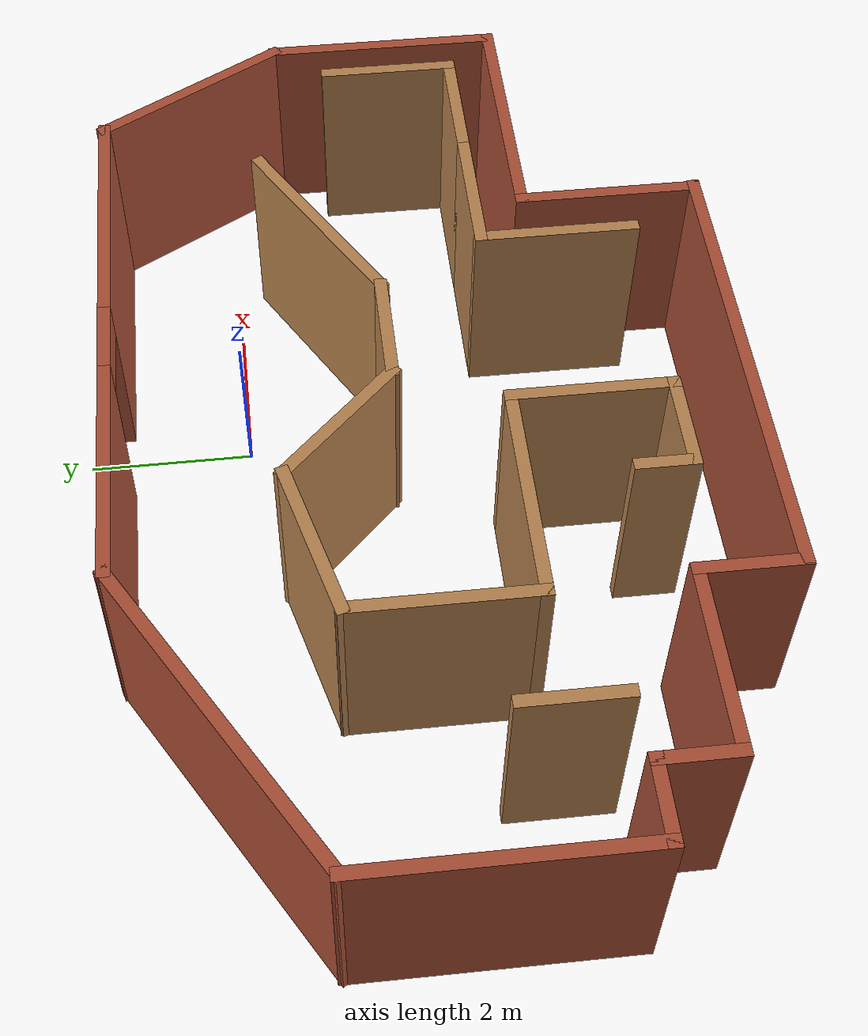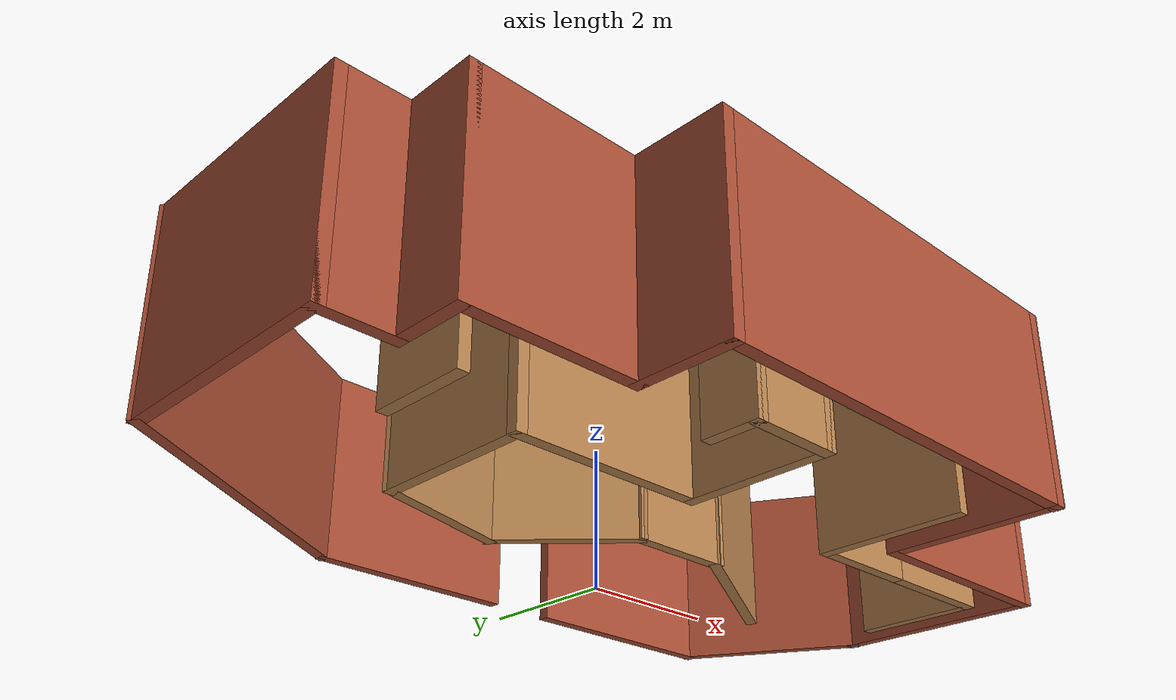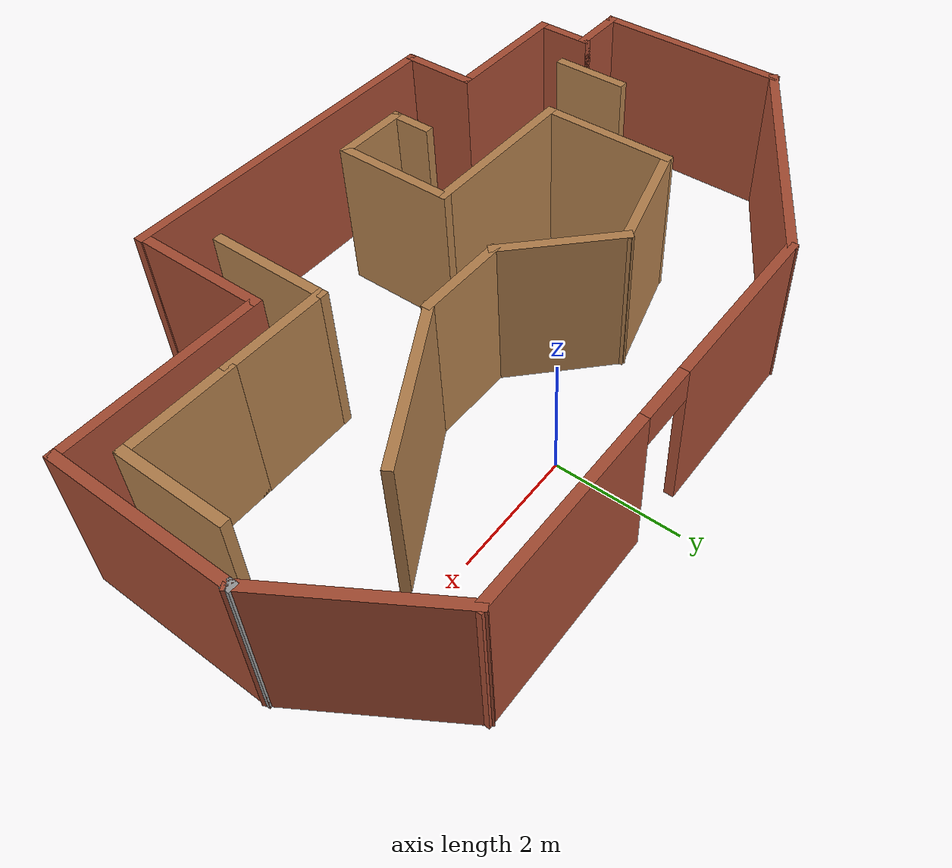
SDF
<?xml version='1.0'?>
<sdf version='1.6'>
  <model name='myworld'>
    <pose frame=''>-1.01461 -2.07217 0 0 -0 0</pose>
    <link name='Wall_10'>
      <collision name='Wall_10_Collision'>
        <geometry>
          <box>
            <size>1.75 0.15 2.5</size>
          </box>
        </geometry>
        <pose frame=''>0 0 1.25 0 -0 0</pose>
      </collision>
      <visual name='Wall_10_Visual'>
        <pose frame=''>0 0 1.25 0 -0 0</pose>
        <geometry>
          <box>
            <size>1.75 0.15 2.5</size>
          </box>
        </geometry>
        <material>
          <script>
            <uri>file://media/materials/scripts/gazebo.material</uri>
            <name>Gazebo/Wood</name>
          </script>
          <ambient>1 1 1 1</ambient>
        </material>
      </visual>
      <pose frame=''>5.32461 -0.097834 0 0 -0 1.5708</pose>
    </link>
    <link name='Wall_14'>
      <collision name='Wall_14_Collision'>
        <geometry>
          <box>
            <size>4.26973 0.15 2.5</size>
          </box>
        </geometry>
        <pose frame=''>0 0 1.25 0 -0 0</pose>
      </collision>
      <visual name='Wall_14_Visual'>
        <pose frame=''>0 0 1.25 0 -0 0</pose>
        <geometry>
          <box>
            <size>4.26973 0.15 2.5</size>
          </box>
        </geometry>
        <material>
          <script>
            <uri>file://media/materials/scripts/gazebo.material</uri>
            <name>Gazebo/Bricks</name>
          </script>
          <ambient>1 1 1 1</ambient>
        </material>
      </visual>
      <pose frame=''>-4.06148 2.53384 0 0 0 -2.59844</pose>
    </link>
    <link name='Wall_15'>
      <collision name='Wall_15_Collision'>
        <geometry>
          <box>
            <size>3.25 0.15 2.5</size>
          </box>
        </geometry>
        <pose frame=''>0 0 1.25 0 -0 0</pose>
      </collision>
      <visual name='Wall_15_Visual'>
        <pose frame=''>0 0 1.25 0 -0 0</pose>
        <geometry>
          <box>
            <size>3.25 0.15 2.5</size>
          </box>
        </geometry>
        <material>
          <script>
            <uri>file://media/materials/scripts/gazebo.material</uri>
            <name>Gazebo/Bricks</name>
          </script>
          <ambient>1 1 1 1</ambient>
        </material>
      </visual>
      <pose frame=''>-5.8249 -0.080771 0 0 0 -1.5708</pose>
    </link>
    <link name='Wall_16'>
      <collision name='Wall_16_Collision'>
        <geometry>
          <box>
            <size>1 0.15 2.5</size>
          </box>
        </geometry>
        <pose frame=''>0 0 1.25 0 -0 0</pose>
      </collision>
      <visual name='Wall_16_Visual'>
        <pose frame=''>0 0 1.25 0 -0 0</pose>
        <geometry>
          <box>
            <size>1 0.15 2.5</size>
          </box>
        </geometry>
        <material>
          <script>
            <uri>file://media/materials/scripts/gazebo.material</uri>
            <name>Gazebo/Bricks</name>
          </script>
          <ambient>1 1 1 1</ambient>
        </material>
      </visual>
      <pose frame=''>-5.3999 -1.63077 0 0 -0 0</pose>
    </link>
    <link name='Wall_17'>
      <collision name='Wall_17_Collision'>
        <geometry>
          <box>
            <size>1 0.15 2.5</size>
          </box>
        </geometry>
        <pose frame=''>0 0 1.25 0 -0 0</pose>
      </collision>
      <visual name='Wall_17_Visual'>
        <pose frame=''>0 0 1.25 0 -0 0</pose>
        <geometry>
          <box>
            <size>1 0.15 2.5</size>
          </box>
        </geometry>
        <material>
          <script>
            <uri>file://media/materials/scripts/gazebo.material</uri>
            <name>Gazebo/Bricks</name>
          </script>
          <ambient>1 1 1 1</ambient>
        </material>
      </visual>
      <pose frame=''>-4.9749 -2.05577 0 0 0 -1.5708</pose>
    </link>
    <link name='Wall_18'>
      <collision name='Wall_18_Collision'>
        <geometry>
          <box>
            <size>2.25 0.15 2.5</size>
          </box>
        </geometry>
        <pose frame=''>0 0 1.25 0 -0 0</pose>
      </collision>
      <visual name='Wall_18_Visual'>
        <pose frame=''>0 0 1.25 0 -0 0</pose>
        <geometry>
          <box>
            <size>2.25 0.15 2.5</size>
          </box>
        </geometry>
        <material>
          <script>
            <uri>file://media/materials/scripts/gazebo.material</uri>
            <name>Gazebo/Bricks</name>
          </script>
          <ambient>1 1 1 1</ambient>
        </material>
      </visual>
      <pose frame=''>-3.9249 -2.48077 0 0 -0 0</pose>
    </link>
    <link name='Wall_19'>
      <collision name='Wall_19_Collision'>
        <geometry>
          <box>
            <size>1.29565 0.15 2.5</size>
          </box>
        </geometry>
        <pose frame=''>0 0 1.25 0 -0 0</pose>
      </collision>
      <visual name='Wall_19_Visual'>
        <pose frame=''>0 0 1.25 0 -0 0</pose>
        <geometry>
          <box>
            <size>1.29565 0.15 2.5</size>
          </box>
        </geometry>
        <material>
          <script>
            <uri>file://media/materials/scripts/gazebo.material</uri>
            <name>Gazebo/Bricks</name>
          </script>
          <ambient>1 1 1 1</ambient>
        </material>
      </visual>
      <pose frame=''>-2.8749 -3.0536 0 0 0 -1.5708</pose>
    </link>
    <link name='Wall_20'>
      <collision name='Wall_20_Collision'>
        <geometry>
          <box>
            <size>5.75 0.15 2.5</size>
          </box>
        </geometry>
        <pose frame=''>0 0 1.25 0 -0 0</pose>
      </collision>
      <visual name='Wall_20_Visual'>
        <pose frame=''>0 0 1.25 0 -0 0</pose>
        <geometry>
          <box>
            <size>5.75 0.15 2.5</size>
          </box>
        </geometry>
        <material>
          <script>
            <uri>file://media/materials/scripts/gazebo.material</uri>
            <name>Gazebo/Bricks</name>
          </script>
          <ambient>1 1 1 1</ambient>
        </material>
      </visual>
      <pose frame=''>-0.057512 -3.62642 0 0 -0 0</pose>
    </link>
    <link name='Wall_21'>
      <collision name='Wall_21_Collision'>
        <geometry>
          <box>
            <size>2.29565 0.15 2.5</size>
          </box>
        </geometry>
        <pose frame=''>0 0 1.25 0 -0 0</pose>
      </collision>
      <visual name='Wall_21_Visual'>
        <pose frame=''>0 0 1.25 0 -0 0</pose>
        <geometry>
          <box>
            <size>2.29565 0.15 2.5</size>
          </box>
        </geometry>
        <material>
          <script>
            <uri>file://media/materials/scripts/gazebo.material</uri>
            <name>Gazebo/Bricks</name>
          </script>
          <ambient>1 1 1 1</ambient>
        </material>
      </visual>
      <pose frame=''>2.7251 -2.5536 0 0 -0 1.5708</pose>
    </link>
    <link name='Wall_22'>
      <collision name='Wall_22_Collision'>
        <geometry>
          <box>
            <size>3.25 0.15 2.5</size>
          </box>
        </geometry>
        <pose frame=''>0 0 1.25 0 -0 0</pose>
      </collision>
      <visual name='Wall_22_Visual'>
        <pose frame=''>0 0 1.25 0 -0 0</pose>
        <geometry>
          <box>
            <size>3.25 0.15 2.5</size>
          </box>
        </geometry>
        <material>
          <script>
            <uri>file://media/materials/scripts/gazebo.material</uri>
            <name>Gazebo/Bricks</name>
          </script>
          <ambient>1 1 1 1</ambient>
        </material>
      </visual>
      <pose frame=''>4.2751 -1.48077 0 0 -0 0</pose>
    </link>
    <link name='Wall_23'>
      <collision name='Wall_23_Collision'>
        <geometry>
          <box>
            <size>3 0.15 2.5</size>
          </box>
        </geometry>
        <pose frame=''>0 0 1.25 0 -0 0</pose>
      </collision>
      <visual name='Wall_23_Visual'>
        <pose frame=''>0 0 1.25 0 -0 0</pose>
        <geometry>
          <box>
            <size>3 0.15 2.5</size>
          </box>
        </geometry>
        <material>
          <script>
            <uri>file://media/materials/scripts/gazebo.material</uri>
            <name>Gazebo/Bricks</name>
          </script>
          <ambient>1 1 1 1</ambient>
        </material>
      </visual>
      <pose frame=''>5.8251 -0.055771 0 0 -0 1.5708</pose>
    </link>
    <link name='Wall_24'>
      <collision name='Wall_24_Collision'>
        <geometry>
          <box>
            <size>0.15 0.15 2.5</size>
          </box>
        </geometry>
        <pose frame=''>0 0 1.25 0 -0 0</pose>
      </collision>
      <visual name='Wall_24_Visual'>
        <pose frame=''>0 0 1.25 0 -0 0</pose>
        <geometry>
          <box>
            <size>0.15 0.15 2.5</size>
          </box>
        </geometry>
        <material>
          <script>
            <uri>file://media/materials/scripts/gazebo.material</uri>
            <name>Gazebo/Grey</name>
          </script>
          <ambient>1 1 1 1</ambient>
        </material>
      </visual>
      <pose frame=''>5.8251 1.36923 0 0 -0 0</pose>
    </link>
    <link name='Wall_25'>
      <collision name='Wall_25_Collision'>
        <geometry>
          <box>
            <size>2.74234 0.15 2.5</size>
          </box>
        </geometry>
        <pose frame=''>0 0 1.25 0 -0 0</pose>
      </collision>
      <visual name='Wall_25_Visual'>
        <pose frame=''>0 0 1.25 0 -0 0</pose>
        <geometry>
          <box>
            <size>2.74234 0.15 2.5</size>
          </box>
        </geometry>
        <material>
          <script>
            <uri>file://media/materials/scripts/gazebo.material</uri>
            <name>Gazebo/Bricks</name>
          </script>
          <ambient>1 1 1 1</ambient>
        </material>
      </visual>
      <pose frame=''>5.16352 2.48384 0 0 -0 2.10646</pose>
    </link>
    <link name='Wall_26'>
      <pose frame=''>1.11714 3.59845 0 0 -0 3.14159</pose>
      <visual name='Wall_26_Visual_0'>
        <pose frame=''>-1.89193 0 1.25 0 -0 0</pose>
        <geometry>
          <box>
            <size>3.16615 0.15 2.5</size>
          </box>
        </geometry>
        <material>
          <script>
            <uri>file://media/materials/scripts/gazebo.material</uri>
            <name>Gazebo/Bricks</name>
          </script>
          <ambient>1 1 1 1</ambient>
        </material>
      </visual>
      <collision name='Wall_26_Collision_0'>
        <geometry>
          <box>
            <size>3.16615 0.15 2.5</size>
          </box>
        </geometry>
        <pose frame=''>-1.89193 0 1.25 0 -0 0</pose>
      </collision>
      <visual name='Wall_26_Visual_1'>
        <pose frame=''>2.03307 0 1.25 0 -0 0</pose>
        <geometry>
          <box>
            <size>2.88385 0.15 2.5</size>
          </box>
        </geometry>
        <material>
          <script>
            <uri>file://media/materials/scripts/gazebo.material</uri>
            <name>Gazebo/Bricks</name>
          </script>
          <ambient>1 1 1 1</ambient>
        </material>
      </visual>
      <collision name='Wall_26_Collision_1'>
        <geometry>
          <box>
            <size>2.88385 0.15 2.5</size>
          </box>
        </geometry>
        <pose frame=''>2.03307 0 1.25 0 -0 0</pose>
      </collision>
      <visual name='Wall_26_Visual_2'>
        <pose frame=''>0.141146 0 2.25 0 -0 0</pose>
        <geometry>
          <box>
            <size>0.9 0.15 0.5</size>
          </box>
        </geometry>
        <material>
          <script>
            <uri>file://media/materials/scripts/gazebo.material</uri>
            <name>Gazebo/Bricks</name>
          </script>
          <ambient>1 1 1 1</ambient>
        </material>
      </visual>
      <collision name='Wall_26_Collision_2'>
        <geometry>
          <box>
            <size>0.9 0.15 0.5</size>
          </box>
        </geometry>
        <pose frame=''>0.141146 0 2.25 0 -0 0</pose>
      </collision>
    </link>
    <link name='Wall_28'>
      <collision name='Wall_28_Collision'>
        <geometry>
          <box>
            <size>1.25 0.15 2.5</size>
          </box>
        </geometry>
        <pose frame=''>0 0 1.25 0 -0 0</pose>
      </collision>
      <visual name='Wall_28_Visual'>
        <pose frame=''>0 0 1.25 0 -0 0</pose>
        <geometry>
          <box>
            <size>1.25 0.15 2.5</size>
          </box>
        </geometry>
        <material>
          <script>
            <uri>file://media/materials/scripts/gazebo.material</uri>
            <name>Gazebo/Wood</name>
          </script>
          <ambient>1 1 1 1</ambient>
        </material>
      </visual>
      <pose frame=''>-0.925386 -2.74783 0 0 -0 0</pose>
    </link>
    <link name='Wall_29'>
      <collision name='Wall_29_Collision'>
        <geometry>
          <box>
            <size>2 0.15 2.5</size>
          </box>
        </geometry>
        <pose frame=''>0 0 1.25 0 -0 0</pose>
      </collision>
      <visual name='Wall_29_Visual'>
        <pose frame=''>0 0 1.25 0 -0 0</pose>
        <geometry>
          <box>
            <size>2 0.15 2.5</size>
          </box>
        </geometry>
        <material>
          <script>
            <uri>file://media/materials/scripts/gazebo.material</uri>
            <name>Gazebo/Wood</name>
          </script>
          <ambient>1 1 1 1</ambient>
        </material>
      </visual>
      <pose frame=''>-0.375386 -1.82283 0 0 -0 1.5708</pose>
    </link>
    <link name='Wall_30'>
      <collision name='Wall_30_Collision'>
        <geometry>
          <box>
            <size>2.75 0.15 2.5</size>
          </box>
        </geometry>
        <pose frame=''>0 0 1.25 0 -0 0</pose>
      </collision>
      <visual name='Wall_30_Visual'>
        <pose frame=''>0 0 1.25 0 -0 0</pose>
        <geometry>
          <box>
            <size>2.75 0.15 2.5</size>
          </box>
        </geometry>
        <material>
          <script>
            <uri>file://media/materials/scripts/gazebo.material</uri>
            <name>Gazebo/Wood</name>
          </script>
          <ambient>1 1 1 1</ambient>
        </material>
      </visual>
      <pose frame=''>-1.67539 -0.897834 0 0 -0 3.14159</pose>
    </link>
    <link name='Wall_35'>
      <collision name='Wall_35_Collision'>
        <geometry>
          <box>
            <size>2.25 0.15 2.5</size>
          </box>
        </geometry>
        <pose frame=''>0 0 1.25 0 -0 0</pose>
      </collision>
      <visual name='Wall_35_Visual'>
        <pose frame=''>0 0 1.25 0 -0 0</pose>
        <geometry>
          <box>
            <size>2.25 0.15 2.5</size>
          </box>
        </geometry>
        <material>
          <script>
            <uri>file://media/materials/scripts/gazebo.material</uri>
            <name>Gazebo/Wood</name>
          </script>
          <ambient>1 1 1 1</ambient>
        </material>
      </visual>
      <pose frame=''>-2.97539 0.152166 0 0 -0 1.5708</pose>
    </link>
    <link name='Wall_36'>
      <collision name='Wall_36_Collision'>
        <geometry>
          <box>
            <size>2 0.15 2.5</size>
          </box>
        </geometry>
        <pose frame=''>0 0 1.25 0 -0 0</pose>
      </collision>
      <visual name='Wall_36_Visual'>
        <pose frame=''>0 0 1.25 0 -0 0</pose>
        <geometry>
          <box>
            <size>2 0.15 2.5</size>
          </box>
        </geometry>
        <material>
          <script>
            <uri>file://media/materials/scripts/gazebo.material</uri>
            <name>Gazebo/Wood</name>
          </script>
          <ambient>1 1 1 1</ambient>
        </material>
      </visual>
      <pose frame=''>-2.0819 1.44157 0 0 -0 0.261799</pose>
    </link>
    <link name='Wall_37'>
      <collision name='Wall_37_Collision'>
        <geometry>
          <box>
            <size>2 0.15 2.5</size>
          </box>
        </geometry>
        <pose frame=''>0 0 1.25 0 -0 0</pose>
      </collision>
      <visual name='Wall_37_Visual'>
        <pose frame=''>0 0 1.25 0 -0 0</pose>
        <geometry>
          <box>
            <size>2 0.15 2.5</size>
          </box>
        </geometry>
        <material>
          <script>
            <uri>file://media/materials/scripts/gazebo.material</uri>
            <name>Gazebo/Wood</name>
          </script>
          <ambient>1 1 1 1</ambient>
        </material>
      </visual>
      <pose frame=''>-0.534349 1.02691 0 0 0 -0.785398</pose>
    </link>
    <link name='Wall_38'>
      <collision name='Wall_38_Collision'>
        <geometry>
          <box>
            <size>1.5 0.15 2.5</size>
          </box>
        </geometry>
        <pose frame=''>0 0 1.25 0 -0 0</pose>
      </collision>
      <visual name='Wall_38_Visual'>
        <pose frame=''>0 0 1.25 0 -0 0</pose>
        <geometry>
          <box>
            <size>1.5 0.15 2.5</size>
          </box>
        </geometry>
        <material>
          <script>
            <uri>file://media/materials/scripts/gazebo.material</uri>
            <name>Gazebo/Wood</name>
          </script>
          <ambient>1 1 1 1</ambient>
        </material>
      </visual>
      <pose frame=''>0.794724 0.372834 0 0 -0 0</pose>
    </link>
    <link name='Wall_39'>
      <collision name='Wall_39_Collision'>
        <geometry>
          <box>
            <size>2.75 0.15 2.5</size>
          </box>
        </geometry>
        <pose frame=''>0 0 1.25 0 -0 0</pose>
      </collision>
      <visual name='Wall_39_Visual'>
        <pose frame=''>0 0 1.25 0 -0 0</pose>
        <geometry>
          <box>
            <size>2.75 0.15 2.5</size>
          </box>
        </geometry>
        <material>
          <script>
            <uri>file://media/materials/scripts/gazebo.material</uri>
            <name>Gazebo/Wood</name>
          </script>
          <ambient>1 1 1 1</ambient>
        </material>
      </visual>
      <pose frame=''>2.59556 1.02283 0 0 -0 0.523599</pose>
    </link>
    <link name='Wall_41'>
      <collision name='Wall_41_Collision'>
        <geometry>
          <box>
            <size>1.25 0.15 2.5</size>
          </box>
        </geometry>
        <pose frame=''>0 0 1.25 0 -0 0</pose>
      </collision>
      <visual name='Wall_41_Visual'>
        <pose frame=''>0 0 1.25 0 -0 0</pose>
        <geometry>
          <box>
            <size>1.25 0.15 2.5</size>
          </box>
        </geometry>
        <material>
          <script>
            <uri>file://media/materials/scripts/gazebo.material</uri>
            <name>Gazebo/Wood</name>
          </script>
          <ambient>1 1 1 1</ambient>
        </material>
      </visual>
      <pose frame=''>-4.2259 -0.982226 0 0 0 -1.5708</pose>
    </link>
    <link name='Wall_5'>
      <collision name='Wall_5_Collision'>
        <geometry>
          <box>
            <size>0.75 0.15 2.5</size>
          </box>
        </geometry>
        <pose frame=''>0 0 1.25 0 -0 0</pose>
      </collision>
      <visual name='Wall_5_Visual'>
        <pose frame=''>0 0 1.25 0 -0 0</pose>
        <geometry>
          <box>
            <size>0.75 0.15 2.5</size>
          </box>
        </geometry>
        <material>
          <script>
            <uri>file://media/materials/scripts/gazebo.material</uri>
            <name>Gazebo/Wood</name>
          </script>
          <ambient>1 1 1 1</ambient>
        </material>
      </visual>
      <pose frame=''>-1.47539 -2.44783 0 0 0 -1.5708</pose>
    </link>
    <link name='Wall_7'>
      <collision name='Wall_7_Collision'>
        <geometry>
          <box>
            <size>2 0.15 2.5</size>
          </box>
        </geometry>
        <pose frame=''>0 0 1.25 0 -0 0</pose>
      </collision>
      <visual name='Wall_7_Visual'>
        <pose frame=''>0 0 1.25 0 -0 0</pose>
        <geometry>
          <box>
            <size>2 0.15 2.5</size>
          </box>
        </geometry>
        <material>
          <script>
            <uri>file://media/materials/scripts/gazebo.material</uri>
            <name>Gazebo/Wood</name>
          </script>
          <ambient>1 1 1 1</ambient>
        </material>
      </visual>
      <pose frame=''>2.12461 -1.82283 0 0 -0 1.5708</pose>
    </link>
    <link name='Wall_8'>
      <collision name='Wall_8_Collision'>
        <geometry>
          <box>
            <size>1.75 0.15 2.5</size>
          </box>
        </geometry>
        <pose frame=''>0 0 1.25 0 -0 0</pose>
      </collision>
      <visual name='Wall_8_Visual'>
        <pose frame=''>0 0 1.25 0 -0 0</pose>
        <geometry>
          <box>
            <size>1.75 0.15 2.5</size>
          </box>
        </geometry>
        <material>
          <script>
            <uri>file://media/materials/scripts/gazebo.material</uri>
            <name>Gazebo/Wood</name>
          </script>
          <ambient>1 1 1 1</ambient>
        </material>
      </visual>
      <pose frame=''>2.92461 -0.897834 0 0 -0 0</pose>
    </link>
    <link name='Wall_9'>
      <collision name='Wall_9_Collision'>
        <geometry>
          <box>
            <size>1.75 0.15 2.5</size>
          </box>
        </geometry>
        <pose frame=''>0 0 1.25 0 -0 0</pose>
      </collision>
      <visual name='Wall_9_Visual'>
        <pose frame=''>0 0 1.25 0 -0 0</pose>
        <geometry>
          <box>
            <size>1.75 0.15 2.5</size>
          </box>
        </geometry>
        <material>
          <script>
            <uri>file://media/materials/scripts/gazebo.material</uri>
            <name>Gazebo/Wood</name>
          </script>
          <ambient>1 1 1 1</ambient>
        </material>
      </visual>
      <pose frame=''>4.52461 -0.897834 0 0 -0 0</pose>
    </link>
    <static>1</static>
  </model>
</sdf>
